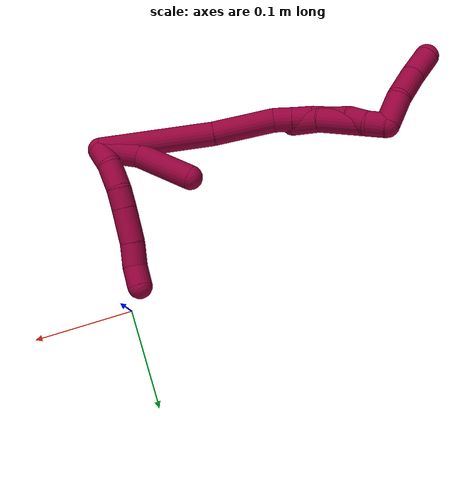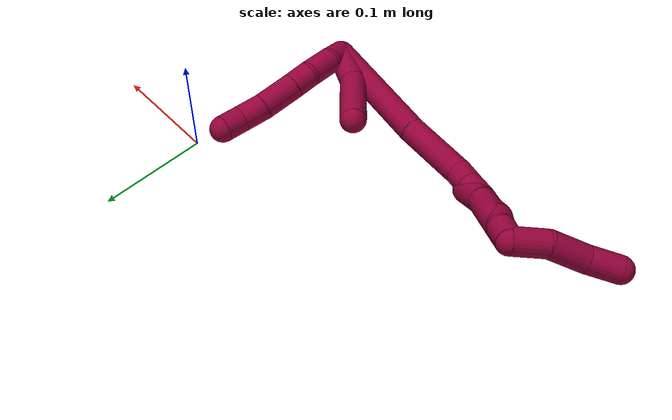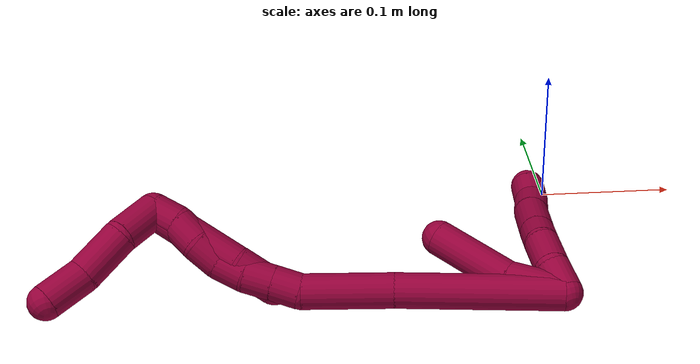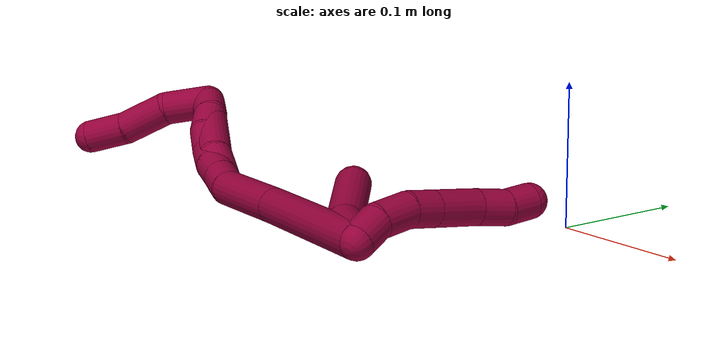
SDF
<sdf version="1.7">
 <world name="default">
  <model name="8">
   <static>0</static>
   <link name="8">
    <collision name="collision-cylinder-e_1_2_8">
     <pose>0.000415 0.000143 0.0112 -0.012797 0.037067 -0.000237</pose>
     <geometry><cylinder><radius>0.0125</radius><length>0.022416</length></cylinder></geometry>
     <surface>
      <friction><ode><mu>1.16</mu><mu2>1.16</mu2><slip1>0</slip1><slip2>0</slip2></ode></friction>
      <contact><ode><kp>1e+06</kp><kd>1</kd><max_vel>0</max_vel><min_depth>0.001</min_depth></ode></contact>
     </surface>
    </collision>
    <visual name="visual-cylinder-e_1_2_8">
     <pose>0.000415 0.000143 0.0112 -0.012797 0.037067 -0.000237</pose>
     <geometry><cylinder><radius>0.0125</radius><length>0.022416</length></cylinder></geometry>
     <material><ambient>0.584314 0 0.227451 1</ambient></material>
    </visual>
    <collision name="collision-cylinder-e_2_8_9">
     <pose>0.004479 0.003645 0.035181 -0.25695 0.269353 -0.035005</pose>
     <geometry><cylinder><radius>0.0125</radius><length>0.027421</length></cylinder></geometry>
     <surface>
      <friction><ode><mu>1.16</mu><mu2>1.16</mu2><slip1>0</slip1><slip2>0</slip2></ode></friction>
      <contact><ode><kp>1e+06</kp><kd>1</kd><max_vel>0</max_vel><min_depth>0.001</min_depth></ode></contact>
     </surface>
    </collision>
    <visual name="visual-cylinder-e_2_8_9">
     <pose>0.004479 0.003645 0.035181 -0.25695 0.269353 -0.035005</pose>
     <geometry><cylinder><radius>0.0125</radius><length>0.027421</length></cylinder></geometry>
     <material><ambient>0.584314 0 0.227451 1</ambient></material>
    </visual>
    <collision name="collision-cylinder-e_3_9_10">
     <pose>0.012292 0.011344 0.0563 -0.480008 0.417085 -0.103483</pose>
     <geometry><cylinder><radius>0.0125</radius><length>0.02056</length></cylinder></geometry>
     <surface>
      <friction><ode><mu>1.16</mu><mu2>1.16</mu2><slip1>0</slip1><slip2>0</slip2></ode></friction>
      <contact><ode><kp>1e+06</kp><kd>1</kd><max_vel>0</max_vel><min_depth>0.001</min_depth></ode></contact>
     </surface>
    </collision>
    <visual name="visual-cylinder-e_3_9_10">
     <pose>0.012292 0.011344 0.0563 -0.480008 0.417085 -0.103483</pose>
     <geometry><cylinder><radius>0.0125</radius><length>0.02056</length></cylinder></geometry>
     <material><ambient>0.584314 0 0.227451 1</ambient></material>
    </visual>
    <collision name="collision-cylinder-e_4_10_11">
     <pose>0.024 0.022883 0.078875 -0.468125 0.44164 -0.106945</pose>
     <geometry><cylinder><radius>0.0125</radius><length>0.035296</length></cylinder></geometry>
     <surface>
      <friction><ode><mu>1.16</mu><mu2>1.16</mu2><slip1>0</slip1><slip2>0</slip2></ode></friction>
      <contact><ode><kp>1e+06</kp><kd>1</kd><max_vel>0</max_vel><min_depth>0.001</min_depth></ode></contact>
     </surface>
    </collision>
    <visual name="visual-cylinder-e_4_10_11">
     <pose>0.024 0.022883 0.078875 -0.468125 0.44164 -0.106945</pose>
     <geometry><cylinder><radius>0.0125</radius><length>0.035296</length></cylinder></geometry>
     <material><ambient>0.584314 0 0.227451 1</ambient></material>
    </visual>
    <collision name="collision-cylinder-e_5_11_12">
     <pose>0.037949 0.034604 0.101955 -0.472682 0.572864 -0.141634</pose>
     <geometry><cylinder><radius>0.0125</radius><length>0.023637</length></cylinder></geometry>
     <surface>
      <friction><ode><mu>1.16</mu><mu2>1.16</mu2><slip1>0</slip1><slip2>0</slip2></ode></friction>
      <contact><ode><kp>1e+06</kp><kd>1</kd><max_vel>0</max_vel><min_depth>0.001</min_depth></ode></contact>
     </surface>
    </collision>
    <visual name="visual-cylinder-e_5_11_12">
     <pose>0.037949 0.034604 0.101955 -0.472682 0.572864 -0.141634</pose>
     <geometry><cylinder><radius>0.0125</radius><length>0.023637</length></cylinder></geometry>
     <material><ambient>0.584314 0 0.227451 1</ambient></material>
    </visual>
    <collision name="collision-cylinder-e_6_12_6">
     <pose>0.048281 0.041677 0.120011 -0.270227 0.389728 -0.053648</pose>
     <geometry><cylinder><radius>0.0125</radius><length>0.020671</length></cylinder></geometry>
     <surface>
      <friction><ode><mu>1.16</mu><mu2>1.16</mu2><slip1>0</slip1><slip2>0</slip2></ode></friction>
      <contact><ode><kp>1e+06</kp><kd>1</kd><max_vel>0</max_vel><min_depth>0.001</min_depth></ode></contact>
     </surface>
    </collision>
    <visual name="visual-cylinder-e_6_12_6">
     <pose>0.048281 0.041677 0.120011 -0.270227 0.389728 -0.053648</pose>
     <geometry><cylinder><radius>0.0125</radius><length>0.020671</length></cylinder></geometry>
     <material><ambient>0.584314 0 0.227451 1</ambient></material>
    </visual>
    <collision name="collision-cylinder-e_1_2_13">
     <pose>-0.013668 0.007013 0.013256 -0.486639 -0.739096 0.191717</pose>
     <geometry><cylinder><radius>0.0125</radius><length>0.040582</length></cylinder></geometry>
     <surface>
      <friction><ode><mu>1.16</mu><mu2>1.16</mu2><slip1>0</slip1><slip2>0</slip2></ode></friction>
      <contact><ode><kp>1e+06</kp><kd>1</kd><max_vel>0</max_vel><min_depth>0.001</min_depth></ode></contact>
     </surface>
    </collision>
    <visual name="visual-cylinder-e_1_2_13">
     <pose>-0.013668 0.007013 0.013256 -0.486639 -0.739096 0.191717</pose>
     <geometry><cylinder><radius>0.0125</radius><length>0.040582</length></cylinder></geometry>
     <material><ambient>0.584314 0 0.227451 1</ambient></material>
    </visual>
    <collision name="collision-cylinder-e_2_13_5">
     <pose>-0.040669 0.021344 0.052032 -0.27923 -0.465377 0.066581</pose>
     <geometry><cylinder><radius>0.0125</radius><length>0.059418</length></cylinder></geometry>
     <surface>
      <friction><ode><mu>1.16</mu><mu2>1.16</mu2><slip1>0</slip1><slip2>0</slip2></ode></friction>
      <contact><ode><kp>1e+06</kp><kd>1</kd><max_vel>0</max_vel><min_depth>0.001</min_depth></ode></contact>
     </surface>
    </collision>
    <visual name="visual-cylinder-e_2_13_5">
     <pose>-0.040669 0.021344 0.052032 -0.27923 -0.465377 0.066581</pose>
     <geometry><cylinder><radius>0.0125</radius><length>0.059418</length></cylinder></geometry>
     <material><ambient>0.584314 0 0.227451 1</ambient></material>
    </visual>
    <collision name="collision-cylinder-e_1_2_14">
     <pose>-0.04945 0.019962 0.022824 -0.718601 -1.02074 0.41452</pose>
     <geometry><cylinder><radius>0.0125</radius><length>0.116012</length></cylinder></geometry>
     <surface>
      <friction><ode><mu>1.16</mu><mu2>1.16</mu2><slip1>0</slip1><slip2>0</slip2></ode></friction>
      <contact><ode><kp>1e+06</kp><kd>1</kd><max_vel>0</max_vel><min_depth>0.001</min_depth></ode></contact>
     </surface>
    </collision>
    <visual name="visual-cylinder-e_1_2_14">
     <pose>-0.04945 0.019962 0.022824 -0.718601 -1.02074 0.41452</pose>
     <geometry><cylinder><radius>0.0125</radius><length>0.116012</length></cylinder></geometry>
     <material><ambient>0.584314 0 0.227451 1</ambient></material>
    </visual>
    <collision name="collision-cylinder-e_2_14_15">
     <pose>-0.127383 0.049715 0.05637 -0.740044 -1.09937 0.466641</pose>
     <geometry><cylinder><radius>0.0125</radius><length>0.063942</length></cylinder></geometry>
     <surface>
      <friction><ode><mu>1.16</mu><mu2>1.16</mu2><slip1>0</slip1><slip2>0</slip2></ode></friction>
      <contact><ode><kp>1e+06</kp><kd>1</kd><max_vel>0</max_vel><min_depth>0.001</min_depth></ode></contact>
     </surface>
    </collision>
    <visual name="visual-cylinder-e_2_14_15">
     <pose>-0.127383 0.049715 0.05637 -0.740044 -1.09937 0.466641</pose>
     <geometry><cylinder><radius>0.0125</radius><length>0.063942</length></cylinder></geometry>
     <material><ambient>0.584314 0 0.227451 1</ambient></material>
    </visual>
    <collision name="collision-cylinder-e_3_15_16">
     <pose>-0.163629 0.0612 0.073172 -0.271778 -0.888082 0.129911</pose>
     <geometry><cylinder><radius>0.0125</radius><length>0.020009</length></cylinder></geometry>
     <surface>
      <friction><ode><mu>1.16</mu><mu2>1.16</mu2><slip1>0</slip1><slip2>0</slip2></ode></friction>
      <contact><ode><kp>1e+06</kp><kd>1</kd><max_vel>0</max_vel><min_depth>0.001</min_depth></ode></contact>
     </surface>
    </collision>
    <visual name="visual-cylinder-e_3_15_16">
     <pose>-0.163629 0.0612 0.073172 -0.271778 -0.888082 0.129911</pose>
     <geometry><cylinder><radius>0.0125</radius><length>0.020009</length></cylinder></geometry>
     <material><ambient>0.584314 0 0.227451 1</ambient></material>
    </visual>
    <collision name="collision-cylinder-e_4_16_17">
     <pose>-0.179335 0.064557 0.085118 -0.276127 -0.916221 0.136815</pose>
     <geometry><cylinder><radius>0.0125</radius><length>0.020027</length></cylinder></geometry>
     <surface>
      <friction><ode><mu>1.16</mu><mu2>1.16</mu2><slip1>0</slip1><slip2>0</slip2></ode></friction>
      <contact><ode><kp>1e+06</kp><kd>1</kd><max_vel>0</max_vel><min_depth>0.001</min_depth></ode></contact>
     </surface>
    </collision>
    <visual name="visual-cylinder-e_4_16_17">
     <pose>-0.179335 0.064557 0.085118 -0.276127 -0.916221 0.136815</pose>
     <geometry><cylinder><radius>0.0125</radius><length>0.020027</length></cylinder></geometry>
     <material><ambient>0.584314 0 0.227451 1</ambient></material>
    </visual>
    <collision name="collision-cylinder-e_5_17_18">
     <pose>-0.194168 0.067197 0.098171 -0.13525 -0.759689 0.054066</pose>
     <geometry><cylinder><radius>0.0125</radius><length>0.020009</length></cylinder></geometry>
     <surface>
      <friction><ode><mu>1.16</mu><mu2>1.16</mu2><slip1>0</slip1><slip2>0</slip2></ode></friction>
      <contact><ode><kp>1e+06</kp><kd>1</kd><max_vel>0</max_vel><min_depth>0.001</min_depth></ode></contact>
     </surface>
    </collision>
    <visual name="visual-cylinder-e_5_17_18">
     <pose>-0.194168 0.067197 0.098171 -0.13525 -0.759689 0.054066</pose>
     <geometry><cylinder><radius>0.0125</radius><length>0.020009</length></cylinder></geometry>
     <material><ambient>0.584314 0 0.227451 1</ambient></material>
    </visual>
    <collision name="collision-cylinder-e_6_18_19">
     <pose>-0.207408 0.066374 0.112871 0.235186 -0.687942 -0.084586</pose>
     <geometry><cylinder><radius>0.0125</radius><length>0.02</length></cylinder></geometry>
     <surface>
      <friction><ode><mu>1.16</mu><mu2>1.16</mu2><slip1>0</slip1><slip2>0</slip2></ode></friction>
      <contact><ode><kp>1e+06</kp><kd>1</kd><max_vel>0</max_vel><min_depth>0.001</min_depth></ode></contact>
     </surface>
    </collision>
    <visual name="visual-cylinder-e_6_18_19">
     <pose>-0.207408 0.066374 0.112871 0.235186 -0.687942 -0.084586</pose>
     <geometry><cylinder><radius>0.0125</radius><length>0.02</length></cylinder></geometry>
     <material><ambient>0.584314 0 0.227451 1</ambient></material>
    </visual>
    <collision name="collision-cylinder-e_7_19_20">
     <pose>-0.218301 0.063943 0.129271 0.070887 -0.471612 -0.017039</pose>
     <geometry><cylinder><radius>0.0125</radius><length>0.020001</length></cylinder></geometry>
     <surface>
      <friction><ode><mu>1.16</mu><mu2>1.16</mu2><slip1>0</slip1><slip2>0</slip2></ode></friction>
      <contact><ode><kp>1e+06</kp><kd>1</kd><max_vel>0</max_vel><min_depth>0.001</min_depth></ode></contact>
     </surface>
    </collision>
    <visual name="visual-cylinder-e_7_19_20">
     <pose>-0.218301 0.063943 0.129271 0.070887 -0.471612 -0.017039</pose>
     <geometry><cylinder><radius>0.0125</radius><length>0.020001</length></cylinder></geometry>
     <material><ambient>0.584314 0 0.227451 1</ambient></material>
    </visual>
    <collision name="collision-cylinder-e_8_20_1">
     <pose>-0.229398 0.064404 0.145632 -0.145062 -0.714607 0.054238</pose>
     <geometry><cylinder><radius>0.0125</radius><length>0.02</length></cylinder></geometry>
     <surface>
      <friction><ode><mu>1.16</mu><mu2>1.16</mu2><slip1>0</slip1><slip2>0</slip2></ode></friction>
      <contact><ode><kp>1e+06</kp><kd>1</kd><max_vel>0</max_vel><min_depth>0.001</min_depth></ode></contact>
     </surface>
    </collision>
    <visual name="visual-cylinder-e_8_20_1">
     <pose>-0.229398 0.064404 0.145632 -0.145062 -0.714607 0.054238</pose>
     <geometry><cylinder><radius>0.0125</radius><length>0.02</length></cylinder></geometry>
     <material><ambient>0.584314 0 0.227451 1</ambient></material>
    </visual>
    <collision name="collision-cylinder-e_1_1_21">
     <pose>-0.213557 0.064769 0.12638 3.11439 0.697253 3.06678</pose>
     <geometry><cylinder><radius>0.0125</radius><length>0.069751</length></cylinder></geometry>
     <surface>
      <friction><ode><mu>1.16</mu><mu2>1.16</mu2><slip1>0</slip1><slip2>0</slip2></ode></friction>
      <contact><ode><kp>1e+06</kp><kd>1</kd><max_vel>0</max_vel><min_depth>0.001</min_depth></ode></contact>
     </surface>
    </collision>
    <visual name="visual-cylinder-e_1_1_21">
     <pose>-0.213557 0.064769 0.12638 3.11439 0.697253 3.06678</pose>
     <geometry><cylinder><radius>0.0125</radius><length>0.069751</length></cylinder></geometry>
     <material><ambient>0.584314 0 0.227451 1</ambient></material>
    </visual>
    <collision name="collision-cylinder-e_2_21_4">
     <pose>-0.180137 0.066079 0.089503 -2.94348 0.816839 -2.69012</pose>
     <geometry><cylinder><radius>0.0125</radius><length>0.030249</length></cylinder></geometry>
     <surface>
      <friction><ode><mu>1.16</mu><mu2>1.16</mu2><slip1>0</slip1><slip2>0</slip2></ode></friction>
      <contact><ode><kp>1e+06</kp><kd>1</kd><max_vel>0</max_vel><min_depth>0.001</min_depth></ode></contact>
     </surface>
    </collision>
    <visual name="visual-cylinder-e_2_21_4">
     <pose>-0.180137 0.066079 0.089503 -2.94348 0.816839 -2.69012</pose>
     <geometry><cylinder><radius>0.0125</radius><length>0.030249</length></cylinder></geometry>
     <material><ambient>0.584314 0 0.227451 1</ambient></material>
    </visual>
    <collision name="collision-cylinder-e_1_1_22">
     <pose>-0.249808 0.066945 0.144331 -2.97798 -1.00023 2.84373</pose>
     <geometry><cylinder><radius>0.0125</radius><length>0.032931</length></cylinder></geometry>
     <surface>
      <friction><ode><mu>1.16</mu><mu2>1.16</mu2><slip1>0</slip1><slip2>0</slip2></ode></friction>
      <contact><ode><kp>1e+06</kp><kd>1</kd><max_vel>0</max_vel><min_depth>0.001</min_depth></ode></contact>
     </surface>
    </collision>
    <visual name="visual-cylinder-e_1_1_22">
     <pose>-0.249808 0.066945 0.144331 -2.97798 -1.00023 2.84373</pose>
     <geometry><cylinder><radius>0.0125</radius><length>0.032931</length></cylinder></geometry>
     <material><ambient>0.584314 0 0.227451 1</ambient></material>
    </visual>
    <collision name="collision-cylinder-e_2_22_23">
     <pose>-0.277498 0.075833 0.126324 -2.46336 -0.862141 1.83305</pose>
     <geometry><cylinder><radius>0.0125</radius><length>0.036439</length></cylinder></geometry>
     <surface>
      <friction><ode><mu>1.16</mu><mu2>1.16</mu2><slip1>0</slip1><slip2>0</slip2></ode></friction>
      <contact><ode><kp>1e+06</kp><kd>1</kd><max_vel>0</max_vel><min_depth>0.001</min_depth></ode></contact>
     </surface>
    </collision>
    <visual name="visual-cylinder-e_2_22_23">
     <pose>-0.277498 0.075833 0.126324 -2.46336 -0.862141 1.83305</pose>
     <geometry><cylinder><radius>0.0125</radius><length>0.036439</length></cylinder></geometry>
     <material><ambient>0.584314 0 0.227451 1</ambient></material>
    </visual>
    <collision name="collision-cylinder-e_3_23_3">
     <pose>-0.304666 0.08743 0.110809 -2.55687 -1.05658 2.18931</pose>
     <geometry><cylinder><radius>0.0125</radius><length>0.03063</length></cylinder></geometry>
     <surface>
      <friction><ode><mu>1.16</mu><mu2>1.16</mu2><slip1>0</slip1><slip2>0</slip2></ode></friction>
      <contact><ode><kp>1e+06</kp><kd>1</kd><max_vel>0</max_vel><min_depth>0.001</min_depth></ode></contact>
     </surface>
    </collision>
    <visual name="visual-cylinder-e_3_23_3">
     <pose>-0.304666 0.08743 0.110809 -2.55687 -1.05658 2.18931</pose>
     <geometry><cylinder><radius>0.0125</radius><length>0.03063</length></cylinder></geometry>
     <material><ambient>0.584314 0 0.227451 1</ambient></material>
    </visual>
    <collision name="collision-sphere-3">
     <pose>-0.318 0.091588 0.104528 0 -0 0</pose>
     <geometry><sphere><radius>0.0125</radius></sphere></geometry>
     <surface>
      <friction><ode><mu>1.16</mu><mu2>1.16</mu2><slip1>0</slip1><slip2>0</slip2></ode></friction>
      <contact><ode><kp>1e+06</kp><kd>1</kd><max_vel>0</max_vel><min_depth>0.001</min_depth></ode></contact>
     </surface>
    </collision>
    <visual name="visual-sphere-3">
     <pose>-0.318 0.091588 0.104528 0 -0 0</pose>
     <geometry><sphere><radius>0.0125</radius></sphere></geometry>
     <material><ambient>0.584314 0 0.227451 1</ambient></material>
    </visual>
    <collision name="collision-sphere-23">
     <pose>-0.291331 0.083272 0.117091 0 -0 0</pose>
     <geometry><sphere><radius>0.0125</radius></sphere></geometry>
     <surface>
      <friction><ode><mu>1.16</mu><mu2>1.16</mu2><slip1>0</slip1><slip2>0</slip2></ode></friction>
      <contact><ode><kp>1e+06</kp><kd>1</kd><max_vel>0</max_vel><min_depth>0.001</min_depth></ode></contact>
     </surface>
    </collision>
    <visual name="visual-sphere-23">
     <pose>-0.291331 0.083272 0.117091 0 -0 0</pose>
     <geometry><sphere><radius>0.0125</radius></sphere></geometry>
     <material><ambient>0.584314 0 0.227451 1</ambient></material>
    </visual>
    <collision name="collision-sphere-22">
     <pose>-0.263665 0.068393 0.135557 0 -0 0</pose>
     <geometry><sphere><radius>0.0125</radius></sphere></geometry>
     <surface>
      <friction><ode><mu>1.16</mu><mu2>1.16</mu2><slip1>0</slip1><slip2>0</slip2></ode></friction>
      <contact><ode><kp>1e+06</kp><kd>1</kd><max_vel>0</max_vel><min_depth>0.001</min_depth></ode></contact>
     </surface>
    </collision>
    <visual name="visual-sphere-22">
     <pose>-0.263665 0.068393 0.135557 0 -0 0</pose>
     <geometry><sphere><radius>0.0125</radius></sphere></geometry>
     <material><ambient>0.584314 0 0.227451 1</ambient></material>
    </visual>
    <collision name="collision-sphere-4">
     <pose>-0.169112 0.068117 0.079353 0 -0 0</pose>
     <geometry><sphere><radius>0.0125</radius></sphere></geometry>
     <surface>
      <friction><ode><mu>1.16</mu><mu2>1.16</mu2><slip1>0</slip1><slip2>0</slip2></ode></friction>
      <contact><ode><kp>1e+06</kp><kd>1</kd><max_vel>0</max_vel><min_depth>0.001</min_depth></ode></contact>
     </surface>
    </collision>
    <visual name="visual-sphere-4">
     <pose>-0.169112 0.068117 0.079353 0 -0 0</pose>
     <geometry><sphere><radius>0.0125</radius></sphere></geometry>
     <material><ambient>0.584314 0 0.227451 1</ambient></material>
    </visual>
    <collision name="collision-sphere-21">
     <pose>-0.191163 0.064042 0.099654 0 -0 0</pose>
     <geometry><sphere><radius>0.0125</radius></sphere></geometry>
     <surface>
      <friction><ode><mu>1.16</mu><mu2>1.16</mu2><slip1>0</slip1><slip2>0</slip2></ode></friction>
      <contact><ode><kp>1e+06</kp><kd>1</kd><max_vel>0</max_vel><min_depth>0.001</min_depth></ode></contact>
     </surface>
    </collision>
    <visual name="visual-sphere-21">
     <pose>-0.191163 0.064042 0.099654 0 -0 0</pose>
     <geometry><sphere><radius>0.0125</radius></sphere></geometry>
     <material><ambient>0.584314 0 0.227451 1</ambient></material>
    </visual>
    <collision name="collision-sphere-1">
     <pose>-0.235951 0.065496 0.153106 0 -0 0</pose>
     <geometry><sphere><radius>0.0125</radius></sphere></geometry>
     <surface>
      <friction><ode><mu>1.16</mu><mu2>1.16</mu2><slip1>0</slip1><slip2>0</slip2></ode></friction>
      <contact><ode><kp>1e+06</kp><kd>1</kd><max_vel>0</max_vel><min_depth>0.001</min_depth></ode></contact>
     </surface>
    </collision>
    <visual name="visual-sphere-1">
     <pose>-0.235951 0.065496 0.153106 0 -0 0</pose>
     <geometry><sphere><radius>0.0125</radius></sphere></geometry>
     <material><ambient>0.584314 0 0.227451 1</ambient></material>
    </visual>
    <collision name="collision-sphere-12">
     <pose>0.044355 0.039125 0.110798 0 -0 0</pose>
     <geometry><sphere><radius>0.0125</radius></sphere></geometry>
     <surface>
      <friction><ode><mu>1.16</mu><mu2>1.16</mu2><slip1>0</slip1><slip2>0</slip2></ode></friction>
      <contact><ode><kp>1e+06</kp><kd>1</kd><max_vel>0</max_vel><min_depth>0.001</min_depth></ode></contact>
     </surface>
    </collision>
    <visual name="visual-sphere-12">
     <pose>0.044355 0.039125 0.110798 0 -0 0</pose>
     <geometry><sphere><radius>0.0125</radius></sphere></geometry>
     <material><ambient>0.584314 0 0.227451 1</ambient></material>
    </visual>
    <collision name="collision-sphere-11">
     <pose>0.031543 0.030082 0.093113 0 -0 0</pose>
     <geometry><sphere><radius>0.0125</radius></sphere></geometry>
     <surface>
      <friction><ode><mu>1.16</mu><mu2>1.16</mu2><slip1>0</slip1><slip2>0</slip2></ode></friction>
      <contact><ode><kp>1e+06</kp><kd>1</kd><max_vel>0</max_vel><min_depth>0.001</min_depth></ode></contact>
     </surface>
    </collision>
    <visual name="visual-sphere-11">
     <pose>0.031543 0.030082 0.093113 0 -0 0</pose>
     <geometry><sphere><radius>0.0125</radius></sphere></geometry>
     <material><ambient>0.584314 0 0.227451 1</ambient></material>
    </visual>
    <collision name="collision-sphere-10">
     <pose>0.016456 0.015684 0.064637 0 -0 0</pose>
     <geometry><sphere><radius>0.0125</radius></sphere></geometry>
     <surface>
      <friction><ode><mu>1.16</mu><mu2>1.16</mu2><slip1>0</slip1><slip2>0</slip2></ode></friction>
      <contact><ode><kp>1e+06</kp><kd>1</kd><max_vel>0</max_vel><min_depth>0.001</min_depth></ode></contact>
     </surface>
    </collision>
    <visual name="visual-sphere-10">
     <pose>0.016456 0.015684 0.064637 0 -0 0</pose>
     <geometry><sphere><radius>0.0125</radius></sphere></geometry>
     <material><ambient>0.584314 0 0.227451 1</ambient></material>
    </visual>
    <collision name="collision-sphere-9">
     <pose>0.008128 0.007004 0.047963 0 -0 0</pose>
     <geometry><sphere><radius>0.0125</radius></sphere></geometry>
     <surface>
      <friction><ode><mu>1.16</mu><mu2>1.16</mu2><slip1>0</slip1><slip2>0</slip2></ode></friction>
      <contact><ode><kp>1e+06</kp><kd>1</kd><max_vel>0</max_vel><min_depth>0.001</min_depth></ode></contact>
     </surface>
    </collision>
    <visual name="visual-sphere-9">
     <pose>0.008128 0.007004 0.047963 0 -0 0</pose>
     <geometry><sphere><radius>0.0125</radius></sphere></geometry>
     <material><ambient>0.584314 0 0.227451 1</ambient></material>
    </visual>
    <collision name="collision-sphere-2">
     <geometry><sphere><radius>0.0125</radius></sphere></geometry>
     <surface>
      <friction><ode><mu>1.16</mu><mu2>1.16</mu2><slip1>0</slip1><slip2>0</slip2></ode></friction>
      <contact><ode><kp>1e+06</kp><kd>1</kd><max_vel>0</max_vel><min_depth>0.001</min_depth></ode></contact>
     </surface>
    </collision>
    <visual name="visual-sphere-2">
     <geometry><sphere><radius>0.0125</radius></sphere></geometry>
     <material><ambient>0.584314 0 0.227451 1</ambient></material>
    </visual>
    <collision name="collision-sphere-19">
     <pose>-0.213757 0.064574 0.120384 0 -0 0</pose>
     <geometry><sphere><radius>0.0125</radius></sphere></geometry>
     <surface>
      <friction><ode><mu>1.16</mu><mu2>1.16</mu2><slip1>0</slip1><slip2>0</slip2></ode></friction>
      <contact><ode><kp>1e+06</kp><kd>1</kd><max_vel>0</max_vel><min_depth>0.001</min_depth></ode></contact>
     </surface>
    </collision>
    <visual name="visual-sphere-19">
     <pose>-0.213757 0.064574 0.120384 0 -0 0</pose>
     <geometry><sphere><radius>0.0125</radius></sphere></geometry>
     <material><ambient>0.584314 0 0.227451 1</ambient></material>
    </visual>
    <collision name="collision-sphere-8">
     <pose>0.000831 0.000287 0.022399 0 -0 0</pose>
     <geometry><sphere><radius>0.0125</radius></sphere></geometry>
     <surface>
      <friction><ode><mu>1.16</mu><mu2>1.16</mu2><slip1>0</slip1><slip2>0</slip2></ode></friction>
      <contact><ode><kp>1e+06</kp><kd>1</kd><max_vel>0</max_vel><min_depth>0.001</min_depth></ode></contact>
     </surface>
    </collision>
    <visual name="visual-sphere-8">
     <pose>0.000831 0.000287 0.022399 0 -0 0</pose>
     <geometry><sphere><radius>0.0125</radius></sphere></geometry>
     <material><ambient>0.584314 0 0.227451 1</ambient></material>
    </visual>
    <collision name="collision-sphere-6">
     <pose>0.052208 0.04423 0.129225 0 -0 0</pose>
     <geometry><sphere><radius>0.0125</radius></sphere></geometry>
     <surface>
      <friction><ode><mu>1.16</mu><mu2>1.16</mu2><slip1>0</slip1><slip2>0</slip2></ode></friction>
      <contact><ode><kp>1e+06</kp><kd>1</kd><max_vel>0</max_vel><min_depth>0.001</min_depth></ode></contact>
     </surface>
    </collision>
    <visual name="visual-sphere-6">
     <pose>0.052208 0.04423 0.129225 0 -0 0</pose>
     <geometry><sphere><radius>0.0125</radius></sphere></geometry>
     <material><ambient>0.584314 0 0.227451 1</ambient></material>
    </visual>
    <collision name="collision-sphere-13">
     <pose>-0.027337 0.014026 0.026511 0 -0 0</pose>
     <geometry><sphere><radius>0.0125</radius></sphere></geometry>
     <surface>
      <friction><ode><mu>1.16</mu><mu2>1.16</mu2><slip1>0</slip1><slip2>0</slip2></ode></friction>
      <contact><ode><kp>1e+06</kp><kd>1</kd><max_vel>0</max_vel><min_depth>0.001</min_depth></ode></contact>
     </surface>
    </collision>
    <visual name="visual-sphere-13">
     <pose>-0.027337 0.014026 0.026511 0 -0 0</pose>
     <geometry><sphere><radius>0.0125</radius></sphere></geometry>
     <material><ambient>0.584314 0 0.227451 1</ambient></material>
    </visual>
    <collision name="collision-sphere-5">
     <pose>-0.054001 0.028661 0.077554 0 -0 0</pose>
     <geometry><sphere><radius>0.0125</radius></sphere></geometry>
     <surface>
      <friction><ode><mu>1.16</mu><mu2>1.16</mu2><slip1>0</slip1><slip2>0</slip2></ode></friction>
      <contact><ode><kp>1e+06</kp><kd>1</kd><max_vel>0</max_vel><min_depth>0.001</min_depth></ode></contact>
     </surface>
    </collision>
    <visual name="visual-sphere-5">
     <pose>-0.054001 0.028661 0.077554 0 -0 0</pose>
     <geometry><sphere><radius>0.0125</radius></sphere></geometry>
     <material><ambient>0.584314 0 0.227451 1</ambient></material>
    </visual>
    <collision name="collision-sphere-14">
     <pose>-0.098899 0.039924 0.045648 0 -0 0</pose>
     <geometry><sphere><radius>0.0125</radius></sphere></geometry>
     <surface>
      <friction><ode><mu>1.16</mu><mu2>1.16</mu2><slip1>0</slip1><slip2>0</slip2></ode></friction>
      <contact><ode><kp>1e+06</kp><kd>1</kd><max_vel>0</max_vel><min_depth>0.001</min_depth></ode></contact>
     </surface>
    </collision>
    <visual name="visual-sphere-14">
     <pose>-0.098899 0.039924 0.045648 0 -0 0</pose>
     <geometry><sphere><radius>0.0125</radius></sphere></geometry>
     <material><ambient>0.584314 0 0.227451 1</ambient></material>
    </visual>
    <collision name="collision-sphere-15">
     <pose>-0.155867 0.059506 0.067092 0 -0 0</pose>
     <geometry><sphere><radius>0.0125</radius></sphere></geometry>
     <surface>
      <friction><ode><mu>1.16</mu><mu2>1.16</mu2><slip1>0</slip1><slip2>0</slip2></ode></friction>
      <contact><ode><kp>1e+06</kp><kd>1</kd><max_vel>0</max_vel><min_depth>0.001</min_depth></ode></contact>
     </surface>
    </collision>
    <visual name="visual-sphere-15">
     <pose>-0.155867 0.059506 0.067092 0 -0 0</pose>
     <geometry><sphere><radius>0.0125</radius></sphere></geometry>
     <material><ambient>0.584314 0 0.227451 1</ambient></material>
    </visual>
    <collision name="collision-sphere-16">
     <pose>-0.171391 0.062894 0.079252 0 -0 0</pose>
     <geometry><sphere><radius>0.0125</radius></sphere></geometry>
     <surface>
      <friction><ode><mu>1.16</mu><mu2>1.16</mu2><slip1>0</slip1><slip2>0</slip2></ode></friction>
      <contact><ode><kp>1e+06</kp><kd>1</kd><max_vel>0</max_vel><min_depth>0.001</min_depth></ode></contact>
     </surface>
    </collision>
    <visual name="visual-sphere-16">
     <pose>-0.171391 0.062894 0.079252 0 -0 0</pose>
     <geometry><sphere><radius>0.0125</radius></sphere></geometry>
     <material><ambient>0.584314 0 0.227451 1</ambient></material>
    </visual>
    <collision name="collision-sphere-17">
     <pose>-0.187278 0.066219 0.090983 0 -0 0</pose>
     <geometry><sphere><radius>0.0125</radius></sphere></geometry>
     <surface>
      <friction><ode><mu>1.16</mu><mu2>1.16</mu2><slip1>0</slip1><slip2>0</slip2></ode></friction>
      <contact><ode><kp>1e+06</kp><kd>1</kd><max_vel>0</max_vel><min_depth>0.001</min_depth></ode></contact>
     </surface>
    </collision>
    <visual name="visual-sphere-17">
     <pose>-0.187278 0.066219 0.090983 0 -0 0</pose>
     <geometry><sphere><radius>0.0125</radius></sphere></geometry>
     <material><ambient>0.584314 0 0.227451 1</ambient></material>
    </visual>
    <collision name="collision-sphere-18">
     <pose>-0.201058 0.068175 0.105358 0 -0 0</pose>
     <geometry><sphere><radius>0.0125</radius></sphere></geometry>
     <surface>
      <friction><ode><mu>1.16</mu><mu2>1.16</mu2><slip1>0</slip1><slip2>0</slip2></ode></friction>
      <contact><ode><kp>1e+06</kp><kd>1</kd><max_vel>0</max_vel><min_depth>0.001</min_depth></ode></contact>
     </surface>
    </collision>
    <visual name="visual-sphere-18">
     <pose>-0.201058 0.068175 0.105358 0 -0 0</pose>
     <geometry><sphere><radius>0.0125</radius></sphere></geometry>
     <material><ambient>0.584314 0 0.227451 1</ambient></material>
    </visual>
    <collision name="collision-sphere-20">
     <pose>-0.222844 0.063312 0.138157 0 -0 0</pose>
     <geometry><sphere><radius>0.0125</radius></sphere></geometry>
     <surface>
      <friction><ode><mu>1.16</mu><mu2>1.16</mu2><slip1>0</slip1><slip2>0</slip2></ode></friction>
      <contact><ode><kp>1e+06</kp><kd>1</kd><max_vel>0</max_vel><min_depth>0.001</min_depth></ode></contact>
     </surface>
    </collision>
    <visual name="visual-sphere-20">
     <pose>-0.222844 0.063312 0.138157 0 -0 0</pose>
     <geometry><sphere><radius>0.0125</radius></sphere></geometry>
     <material><ambient>0.584314 0 0.227451 1</ambient></material>
    </visual>
    <inertial>
     <pose>-0.114125 0.042386 0.076121 0 -0 0</pose>
     <mass>0.75</mass>
     <inertia>
      <ixx>0.000108</ixx>
      <ixy>0</ixy>
      <ixz>0</ixz>
      <iyy>0.000293</iyy>
      <iyz>0</iyz>
      <izz>8.8e-05</izz>
     </inertia>
    </inertial>
   </link>
   <pose>-0.014811 -0.165703 0.014809 -1.15217 0.156156 0.381549</pose>
  </model>
 </world>
</sdf>
